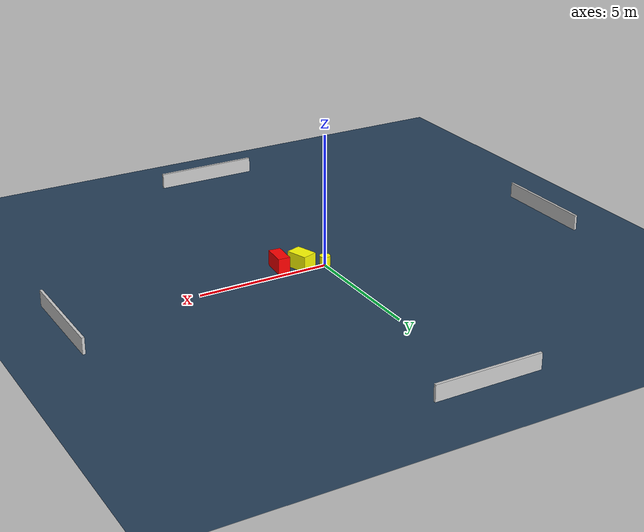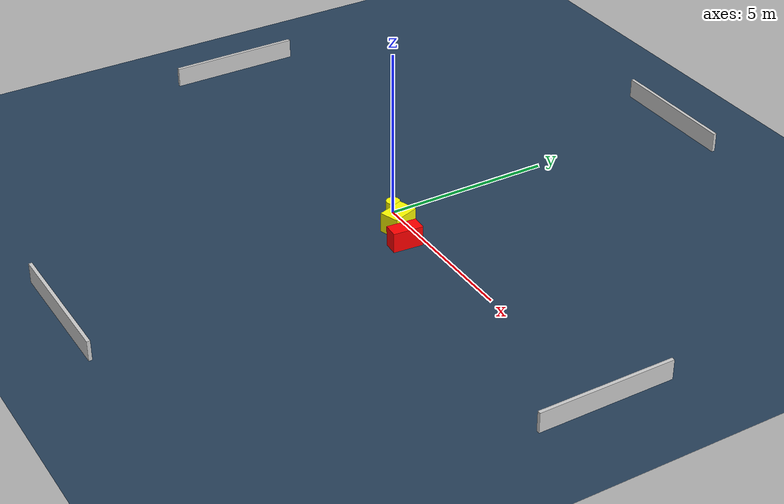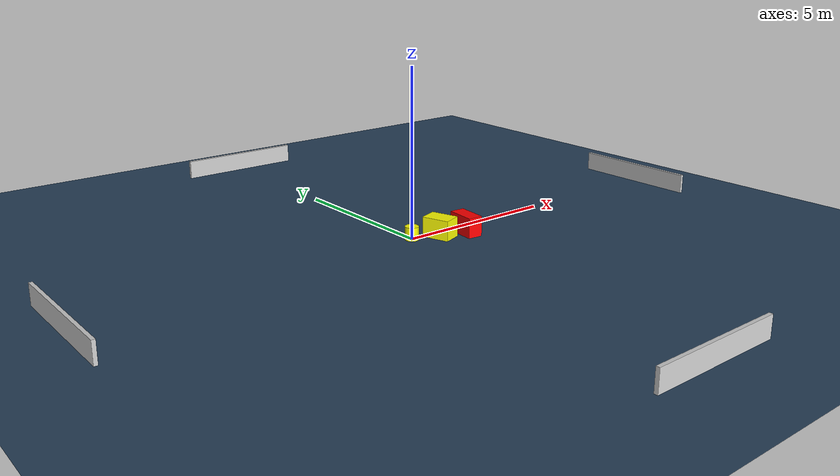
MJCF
<?xml version="1.0" ?>
<mujoco model="generated_environment">
  <option timestep="0.01" integrator="RK4" cone="elliptic"/>
  <default>
    <geom density="1"/>
  </default>
  <asset>
    <texture builtin="gradient" height="3072" name="skybox" rgb1="0.3 0.5 0.7" rgb2="0 0 0" type="skybox" width="512"/>
    <texture builtin="checker" height="300" name="groundplane" rgb1="0.2 0.3 0.4" rgb2="0.1 0.2 0.3" type="2d" width="300"/>
    <material name="groundplane" reflectance="0.2" texrepeat="5 5" texture="groundplane"/>
  </asset>
  <worldbody>
    <light dir="0 0 -1" directional="true" pos="0 0 1.5"/>
    <geom condim="3" friction="0.5 0.005 0.001" material="groundplane" name="floor" pos="0 0 0" size="0 0 0.05" type="plane"/>
    <body name="walls">
      <geom name="wall_1" condim="4" pos="-10.0 0.0 0.3" rgba="0.800000011920929 0.800000011920929 0.800000011920929 1.0" size="0.05 2.0 0.3" type="box"/>
      <geom name="wall_2" condim="4" pos="10.0 0.0 0.3" rgba="0.800000011920929 0.800000011920929 0.800000011920929 1.0" size="0.05 2.0 0.3" type="box"/>
      <geom name="wall_3" condim="4" pos="0.0 -10.0 0.3" rgba="0.800000011920929 0.800000011920929 0.800000011920929 1.0" size="2.0 0.05 0.3" type="box"/>
      <geom name="wall_4" condim="4" pos="0.0 10.0 0.3" rgba="0.800000011920929 0.800000011920929 0.800000011920929 1.0" size="2.0 0.05 0.3" type="box"/>
    </body>
    <body name="robot">
      <joint name="joint_x" type="slide" pos="0 0 0" axis="1 0 0"/>
      <joint name="joint_y" type="slide" pos="0 0 0" axis="0 1 0"/>
      <geom name="robot" type="cylinder" pos="0.0 0.0 0.2" size="0.2 0.2 0.0" mass="5.0" friction="1.0 0.005 0.0001" condim="4" rgba="1.0 1.0 0.0 1.0"/>
    </body>
    <body name="obstacle_1_movable">
      <geom name="obstacle_1_movable" condim="4" pos="0.7983215779368052 -0.3060307897160571 0.3" euler="0 0 288.61244330448545" friction="0.0 0.005 0.001" rgba="1.0 1.0 0.0 1.0" size="0.414886838754141 0.28819807295737604 0.3" type="box" mass="0.1"/>
      <joint type="free"/>
    </body>
    <body name="obstacle_2_static">
      <geom name="obstacle_2_static" condim="4" pos="1.5754363050888804 -0.5656718221298622 0.3" euler="0 0 355.2989802061088" friction="0.0 0.005 0.001" rgba="1.0 0.0 0.0 1.0" size="0.22566179662913585 0.4468071809795048 0.3" type="box"/>
    </body>
  </worldbody>
  <actuator>
    <motor name="actuator_x" joint="joint_x" gear="1" ctrlrange="-1 1"/>
    <motor name="actuator_y" joint="joint_y" gear="1" ctrlrange="-1 1"/>
  </actuator>
</mujoco>
